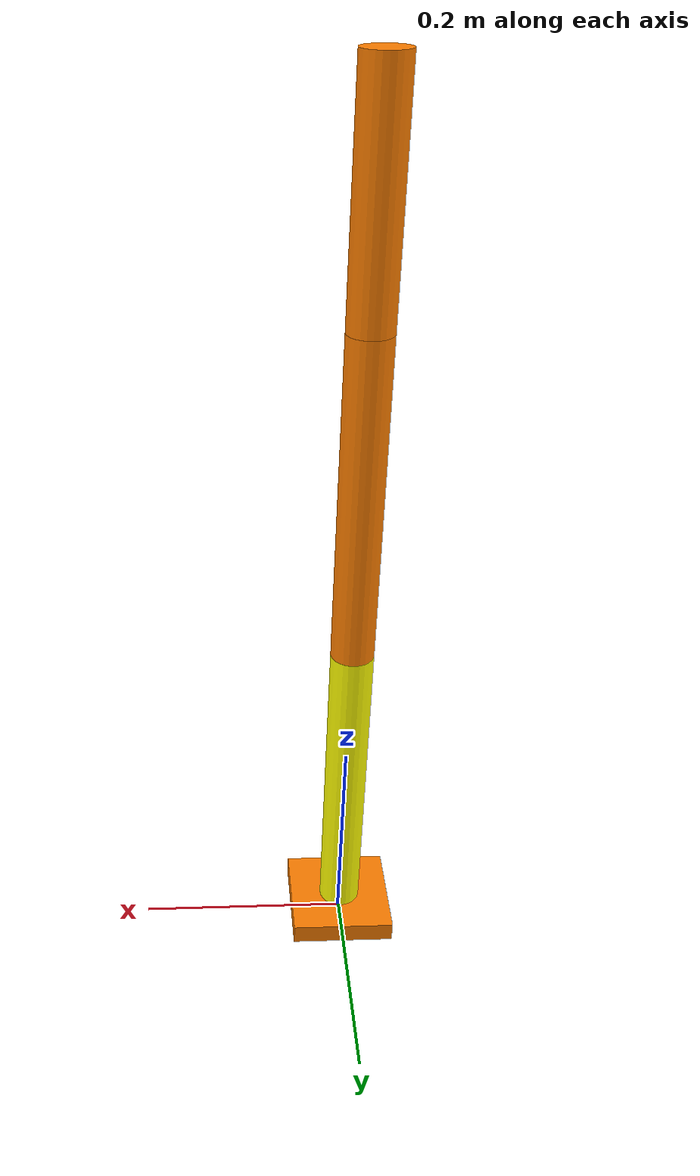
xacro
<?xml version="1.0"?>
<robot name="arm" xmlns:xacro="http://www.ros.org/wiki/xacro">

  <!-- Propiedades del robot -->
  <xacro:property name="arm_base_length" value="0.1"/>
  <xacro:property name="arm_base_width" value="0.1"/>
  <xacro:property name="arm_base_height" value="0.02"/>
  <xacro:property name="forearm_radius" value="0.02"/>
  <xacro:property name="forearm_length" value="0.3"/>
  <xacro:property name="hand_radius" value="0.02"/>
  <xacro:property name="hand_length" value="0.3"/>
  <xacro:property name="R_arm3" value="0.02"/>
  <xacro:property name="arm3" value="0.2"/>

  <!-- ==================== 1. BASE ==================== -->
  <link name="arm_base_link">
    <visual>
      <geometry>
        <box size="${arm_base_length} ${arm_base_width} ${arm_base_height}"/>
      </geometry>
      <origin xyz="0 0 ${arm_base_height / 2.0}" rpy="0 0 0"/>
      <material name="orange">
        <color rgba="1.0 0.5 0.0 1.0"/>
      </material>
    </visual>
  </link>

  <!-- ==================== 2. HOMBRO (ROTACIÓN Z) ==================== -->
  <!-- Articulación de rotación en Z (Giro horizontal) -->
  <joint name="arm_joint1" type="revolute">
    <parent link="arm_base_link"/>
    <child link="shoulder_dummy_link"/>
    <origin xyz="0 0 ${arm_base_height}" rpy="0 0 0"/>
    <axis xyz="0 0 1"/> <!-- Rotación en Z -->
    <limit lower="-${pi}" upper="${pi}" effort="100" velocity="100"/>
    <dynamics friction="0.05" damping="0.1"/>
  </joint>

  <!-- Eslabón virtual intermedio para permitir el segundo grado de libertad -->
  <link name="shoulder_dummy_link"/>

  <!-- ==================== 3. ANTEBRAZO (ROTACIÓN Y) ==================== -->
  <!-- Articulación de rotación en Y (Elevación vertical) -->
  <joint name="arm_joint2" type="revolute">
    <parent link="shoulder_dummy_link"/>
    <child link="forearm_link"/>
    <origin xyz="0 0 0" rpy="0 0 0"/>
    <axis xyz="0 1 0"/> <!-- Rotación en Y -->
    <limit lower="0" upper="${pi/2}" effort="100" velocity="100"/>
    <dynamics friction="0.05" damping="0.1"/>
  </joint>

  <link name="forearm_link">
    <visual>
      <geometry>
        <cylinder radius="${forearm_radius}" length="${forearm_length}"/>
      </geometry>
      <!-- Desplazamos el cilindro para que rote desde su base inferior -->
      <origin xyz="0 0 ${forearm_length / 2.0}" rpy="0 0 0"/>
      <material name="yellow">
        <color rgba="1.0 1.0 0.0 1.0"/>
      </material>
    </visual>
  </link>

  <!-- ==================== 4. MANO (ROTACIÓN Y o Z) ==================== -->
  <!-- Conectamos el antebrazo con la mano -->
  <joint name="arm_joint3" type="revolute">
    <parent link="forearm_link"/>
    <child link="hand_link"/>
    <origin xyz="0 0 ${forearm_length}" rpy="0 0 0"/>
    <axis xyz="0 1 0"/> <!-- Cambia a "0 0 1" si quieres que la mano gire sobre su propio eje Z -->
    <limit lower="0" upper="${pi/2}" effort="100" velocity="100"/>
    <dynamics friction="0.05" damping="0.1"/>
  </joint>

  <link name="hand_link">
    <visual>
      <geometry>
        <cylinder radius="${hand_radius}" length="${hand_length}"/>
      </geometry>
      <origin xyz="0 0 ${hand_length / 2.0}" rpy="0 0 0"/>
      <material name="orange"/>
    </visual>
  </link>

  <joint name="arm_joint4" type="revolute">
    <parent link="hand_link"/>
    <child link="arm_link3"/>
    <origin xyz="0 0 ${forearm_length}" rpy="0 0 0"/>
    <axis xyz="0 1 0"/> <!-- Cambia a "0 0 1" si quieres que la mano gire sobre su propio eje Z -->
    <limit lower="0" upper="${pi/2}" effort="100" velocity="100"/>
    <dynamics friction="0.05" damping="0.1"/>
  </joint>

  <link name="arm_link3">
    <visual>
      <geometry>
        <cylinder radius="${R_arm3}" length="${arm3}"/>
      </geometry>
      <origin xyz="0 0 ${arm3 / 2.0}" rpy="0 0 0"/>
      <material name="orange"/>
    </visual>
  </link>

</robot>
